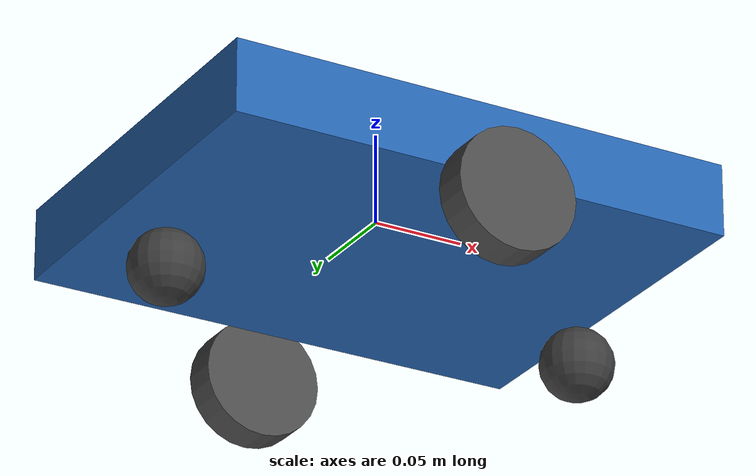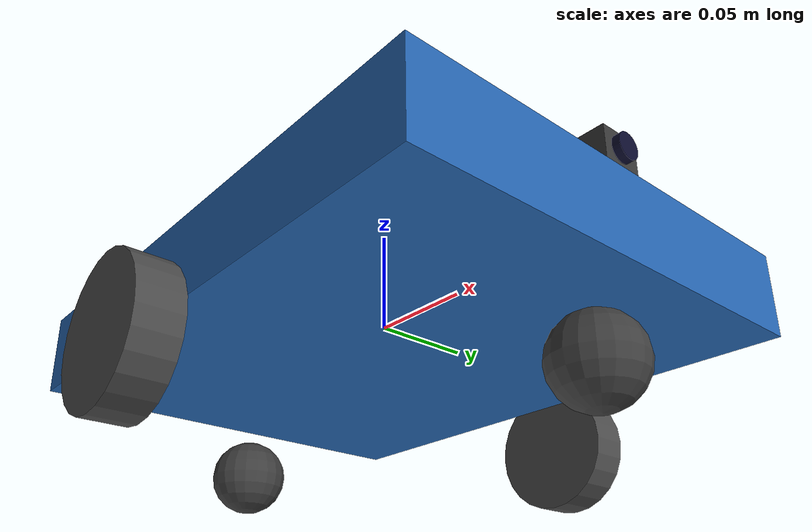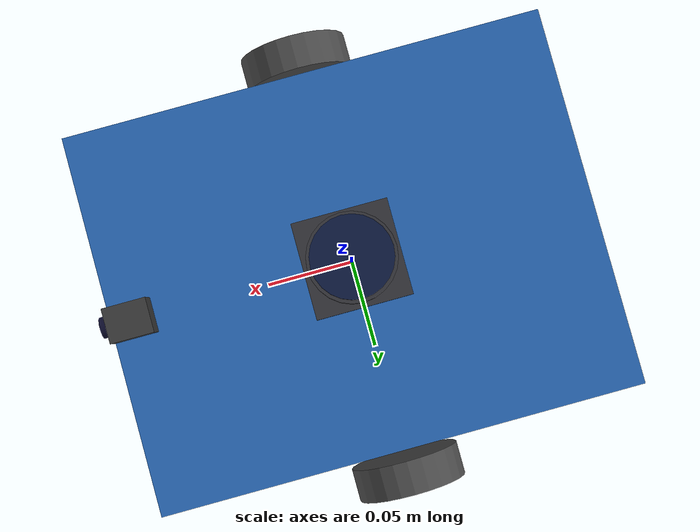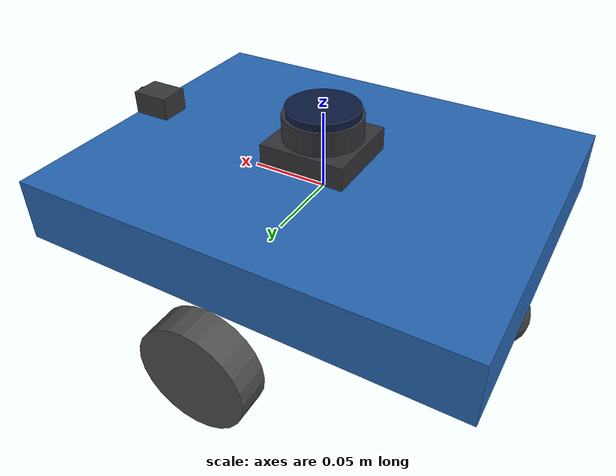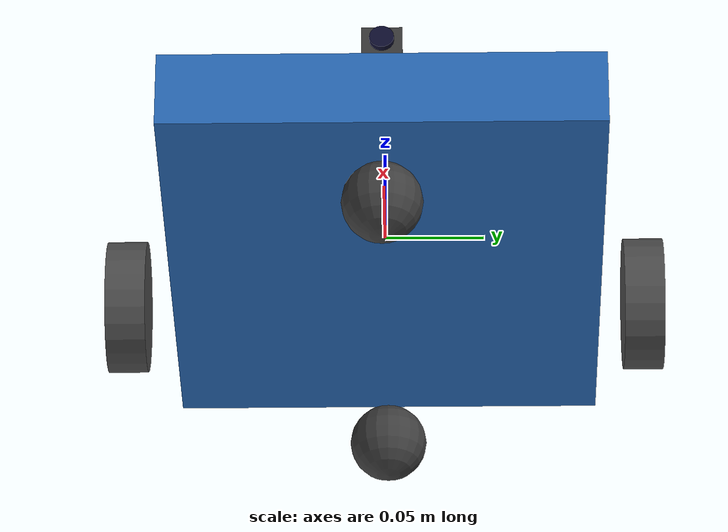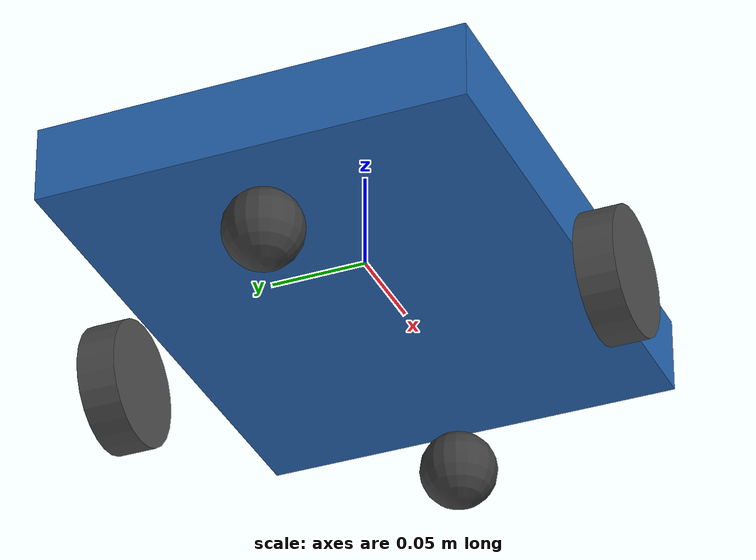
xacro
<?xml version="1.0"?>
<robot name="amr" xmlns:xacro="http://www.ros.org/wiki/xacro">

  <xacro:include filename="$(find amr_description)/urdf/includes/properties.xacro"/>
  <xacro:include filename="$(find amr_description)/urdf/includes/materials.xacro"/>
  <xacro:include filename="$(find amr_description)/urdf/includes/chassis.xacro"/>
  <xacro:include filename="$(find amr_description)/urdf/includes/wheels.xacro"/>
  <xacro:include filename="$(find amr_description)/urdf/includes/casters.xacro"/>
  <xacro:include filename="$(find amr_description)/urdf/includes/sensors.xacro"/>
  <xacro:include filename="$(find amr_description)/urdf/includes/transmissions.xacro"/>
  <xacro:include filename="$(find amr_description)/urdf/includes/gazebo.xacro"/>

  <!-- ============================================================
       Base footprint
       ============================================================ -->
  <link name="base_footprint"/>
  <joint name="base_footprint_joint" type="fixed">
    <parent link="base_footprint"/>
    <child link="base_link"/>
  </joint>

  <!-- ============================================================
       Chassis
       ============================================================ -->
  <xacro:chassis name="base_link"/>

  <!-- ============================================================
       Drive wheels
       ============================================================ -->
  <xacro:drive_wheel side="left" reflect="1"/>
  <xacro:drive_wheel side="right" reflect="-1"/>

  <!-- ============================================================
       Caster wheels
       ============================================================ -->
  <xacro:caster position="front" x_offset="${caster_front_x_offset}"/>
  <xacro:caster position="rear"  x_offset="${caster_rear_x_offset}"/>

  <!-- ============================================================
       Sensors
       ============================================================ -->
  <xacro:imu_sensor name="imu" parent="base_link"/>
  <xacro:lidar_sensor name="laser" parent="base_link"/>
  <xacro:camera_sensor name="camera" parent="base_link"/>

</robot>

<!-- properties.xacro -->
<robot xmlns:xacro="http://www.ros.org/wiki/xacro">

  <!-- ============================================================
       Chassis
       ============================================================ -->
  <xacro:property name="chassis_length" value="0.28"/>
  <xacro:property name="chassis_width" value="0.22"/>
  <xacro:property name="chassis_height" value="0.04"/>
  <xacro:property name="chassis_mass" value="5.0"/>
  <xacro:property name="chassis_z_offset" value="0.0"/>

  <!-- ============================================================
       Drive wheels — placed at left/right sides, axis Y
       ============================================================ -->
  <xacro:property name="wheel_radius" value="0.033"/>
  <xacro:property name="wheel_length" value="0.02"/>
  <xacro:property name="wheel_mass" value="0.5"/>
  <xacro:property name="wheel_y_offset" value="0.13"/>
  <xacro:property name="wheel_z_offset" value="-0.04"/>
  <xacro:property name="wheel_effort" value="100"/>
  <xacro:property name="wheel_velocity" value="10"/>

  <xacro:property name="caster_radius" value="0.02"/>
  <xacro:property name="caster_mass" value="0.2"/>
  <xacro:property name="caster_y_offset" value="0.0"/>
  <xacro:property name="caster_z_offset" value="${wheel_z_offset - wheel_radius + caster_radius}"/>
  <xacro:property name="caster_front_x_offset" value="0.12"/>
  <xacro:property name="caster_rear_x_offset" value="-0.12"/>

  <!-- ============================================================
       IMU sensor — center of chassis
       ============================================================ -->
  <xacro:property name="imu_x_offset" value="0.0"/>
  <xacro:property name="imu_y_offset" value="0.0"/>
  <xacro:property name="imu_z_offset" value="0.04"/>

  <!-- ============================================================
       2D LiDAR sensor — centered on top deck
       ============================================================ -->
  <xacro:property name="laser_stand_height" value="0.015"/>
  <xacro:property name="laser_stand_width" value="0.055"/>
  <xacro:property name="laser_x_offset" value="0.0"/>
  <xacro:property name="laser_y_offset" value="0.0"/>
  <xacro:property name="laser_z_offset" value="${chassis_height/2 + laser_stand_height/2}"/>
  <xacro:property name="lidar_radius" value="0.025"/>
  <xacro:property name="lidar_length" value="0.015"/>

  <!-- ============================================================
       RGB Camera sensor — forward-facing on top deck
       ============================================================ -->
  <xacro:property name="camera_x_offset" value="0.1275"/>
  <xacro:property name="camera_y_offset" value="0.0"/>
  <xacro:property name="camera_z_offset" value="${chassis_height/2 + 0.015/2}"/>

</robot>

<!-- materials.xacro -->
<robot xmlns:xacro="http://www.ros.org/wiki/xacro">

  <material name="chassis_color">
    <color rgba="0.15 0.4 0.7 1.0"/>
  </material>

  <material name="wheel_color">
    <color rgba="0.3 0.3 0.3 1.0"/>
  </material>

  <material name="caster_color">
    <color rgba="0.25 0.25 0.25 1.0"/>
  </material>

  <material name="lidar">
    <color rgba="0.2 0.2 0.22 1.0"/>
  </material>

  <material name="lidar_lens">
    <color rgba="0.05 0.1 0.25 1.0"/>
  </material>

  <material name="camera">
    <color rgba="0.22 0.22 0.22 1.0"/>
  </material>

  <material name="camera_lens">
    <color rgba="0.05 0.05 0.18 1.0"/>
  </material>

  <material name="imu_color">
    <color rgba="0.85 0.25 0.0 1.0"/>
  </material>

  <material name="white">
    <color rgba="1.0 1.0 1.0 1.0"/>
  </material>

</robot>

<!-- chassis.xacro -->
<robot xmlns:xacro="http://www.ros.org/wiki/xacro">

  <xacro:macro name="chassis" params="name">
    <link name="${name}">
      <inertial>
        <mass value="${chassis_mass}"/>
        <inertia
          ixx="${(chassis_mass/12) * (chassis_height**2 + chassis_width**2)}"
          ixy="0.0" ixz="0.0"
          iyy="${(chassis_mass/12) * (chassis_length**2 + chassis_height**2)}"
          iyz="0.0"
          izz="${(chassis_mass/12) * (chassis_length**2 + chassis_width**2)}"/>
      </inertial>
      <visual>
        <geometry>
          <box size="${chassis_length} ${chassis_width} ${chassis_height}"/>
        </geometry>
        <material name="chassis_color"/>
        <origin xyz="0 0 0" rpy="0 0 0"/>
      </visual>
      <collision>
        <geometry>
          <box size="${chassis_length} ${chassis_width} ${chassis_height}"/>
        </geometry>
        <origin xyz="0 0 0" rpy="0 0 0"/>
      </collision>
    </link>
  </xacro:macro>

</robot>

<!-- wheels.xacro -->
<robot xmlns:xacro="http://www.ros.org/wiki/xacro">

  <xacro:macro name="drive_wheel" params="side reflect">
    <joint name="wheel_${side}_joint" type="continuous">
      <parent link="base_link"/>
      <child link="wheel_${side}_link"/>
      <origin xyz="0 ${reflect * wheel_y_offset} ${wheel_z_offset}" rpy="0 0 0"/>
      <axis xyz="0 1 0"/>
      <limit effort="${wheel_effort}" velocity="${wheel_velocity}"/>
      <dynamics damping="0.1" friction="0.0"/>
    </joint>
    <link name="wheel_${side}_link">
      <inertial>
        <mass value="${wheel_mass}"/>
        <inertia
          ixx="${(wheel_mass/12) * (3*wheel_radius**2 + wheel_length**2)}"
          ixy="0.0" ixz="0.0"
          iyy="${0.5 * wheel_mass * wheel_radius**2}"
          iyz="0.0"
          izz="${(wheel_mass/12) * (3*wheel_radius**2 + wheel_length**2)}"/>
      </inertial>
      <visual>
        <geometry>
          <cylinder radius="${wheel_radius}" length="${wheel_length}"/>
        </geometry>
        <material name="wheel_color"/>
        <origin xyz="0 0 0" rpy="1.5708 0 0"/>
      </visual>
      <collision>
        <geometry>
          <cylinder radius="${wheel_radius}" length="${wheel_length}"/>
        </geometry>
        <origin xyz="0 0 0" rpy="1.5708 0 0"/>
      </collision>
    </link>
  </xacro:macro>

</robot>

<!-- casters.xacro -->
<robot xmlns:xacro="http://www.ros.org/wiki/xacro">

  <xacro:macro name="caster" params="position x_offset">
    <joint name="caster_${position}_joint" type="fixed">
      <parent link="base_link"/>
      <child link="caster_${position}_link"/>
      <origin xyz="${x_offset} ${caster_y_offset} ${caster_z_offset}" rpy="0 0 0"/>
    </joint>
    <link name="caster_${position}_link">
      <inertial>
        <mass value="${caster_mass}"/>
        <inertia
          ixx="${0.4 * caster_mass * caster_radius**2}"
          ixy="0.0" ixz="0.0"
          iyy="${0.4 * caster_mass * caster_radius**2}"
          iyz="0.0"
          izz="${0.4 * caster_mass * caster_radius**2}"/>
      </inertial>
      <visual>
        <geometry>
          <sphere radius="${caster_radius}"/>
        </geometry>
        <material name="caster_color"/>
      </visual>
      <collision>
        <geometry>
          <sphere radius="${caster_radius}"/>
        </geometry>
      </collision>
    </link>
  </xacro:macro>

</robot>

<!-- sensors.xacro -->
<robot xmlns:xacro="http://www.ros.org/wiki/xacro">

  <xacro:macro name="imu_sensor" params="name parent">
    <joint name="${name}_joint" type="fixed">
      <parent link="${parent}"/>
      <child link="${name}_link"/>
      <origin xyz="${imu_x_offset} ${imu_y_offset} ${imu_z_offset}" rpy="0 0 0"/>
    </joint>
    <link name="${name}_link">
      <collision>
        <geometry>
          <box size="0.01 0.01 0.01"/>
        </geometry>
      </collision>
    </link>
  </xacro:macro>

  <xacro:macro name="lidar_sensor" params="name parent">
    <joint name="${name}_stand_joint" type="fixed">
      <parent link="${parent}"/>
      <child link="${name}_stand_link"/>
      <origin xyz="${laser_x_offset} ${laser_y_offset} ${laser_z_offset}" rpy="0 0 0"/>
    </joint>
    <link name="${name}_stand_link">
      <visual>
        <geometry>
          <box size="${laser_stand_width} ${laser_stand_width} ${laser_stand_height}"/>
        </geometry>
        <material name="lidar"/>
      </visual>
      <collision>
        <geometry>
          <box size="${laser_stand_width} ${laser_stand_width} ${laser_stand_height}"/>
        </geometry>
      </collision>
    </link>
    <joint name="${name}_joint" type="fixed">
      <parent link="${name}_stand_link"/>
      <child link="${name}_frame"/>
      <origin xyz="0 0 ${laser_stand_height/2 + lidar_length/2}" rpy="0 0 0"/>
    </joint>
    <link name="${name}_frame">
      <visual>
        <geometry>
          <cylinder radius="${lidar_radius}" length="${lidar_length}"/>
        </geometry>
        <material name="lidar"/>
      </visual>
      <collision>
        <geometry>
          <cylinder radius="${lidar_radius}" length="${lidar_length}"/>
        </geometry>
      </collision>
    </link>
    <joint name="${name}_lens_joint" type="fixed">
      <parent link="${name}_frame"/>
      <child link="${name}_lens_link"/>
      <origin xyz="0 0 ${lidar_length/2 + 0.005/2}" rpy="0 0 0"/>
    </joint>
    <link name="${name}_lens_link">
      <visual>
        <geometry>
          <cylinder radius="${lidar_radius - 0.002}" length="0.005"/>
        </geometry>
        <material name="lidar_lens"/>
      </visual>
    </link>
  </xacro:macro>

  <xacro:macro name="camera_sensor" params="name parent">
    <joint name="${name}_joint" type="fixed">
      <parent link="${parent}"/>
      <child link="${name}_link"/>
      <origin xyz="${camera_x_offset} ${camera_y_offset} ${camera_z_offset}" rpy="0 0 0"/>
    </joint>
    <link name="${name}_link">
      <visual>
        <geometry>
          <box size="0.025 0.020 0.015"/>
        </geometry>
        <material name="camera"/>
      </visual>
      <collision>
        <geometry>
          <box size="0.025 0.020 0.015"/>
        </geometry>
      </collision>
    </link>
    <joint name="${name}_lens_joint" type="fixed">
      <parent link="${name}_link"/>
      <child link="${name}_lens_link"/>
      <origin xyz="0.014 0 0" rpy="0 1.5708 0"/>
    </joint>
    <link name="${name}_lens_link">
      <visual>
        <geometry>
          <cylinder radius="0.006" length="0.004"/>
        </geometry>
        <material name="camera_lens"/>
      </visual>
    </link>
    <joint name="${name}_optical_joint" type="fixed">
      <parent link="${name}_link"/>
      <child link="${name}_optical_frame"/>
      <origin xyz="0 0 0" rpy="-1.5708 0 -1.5708"/>
    </joint>
    <link name="${name}_optical_frame"/>
  </xacro:macro>

</robot>
